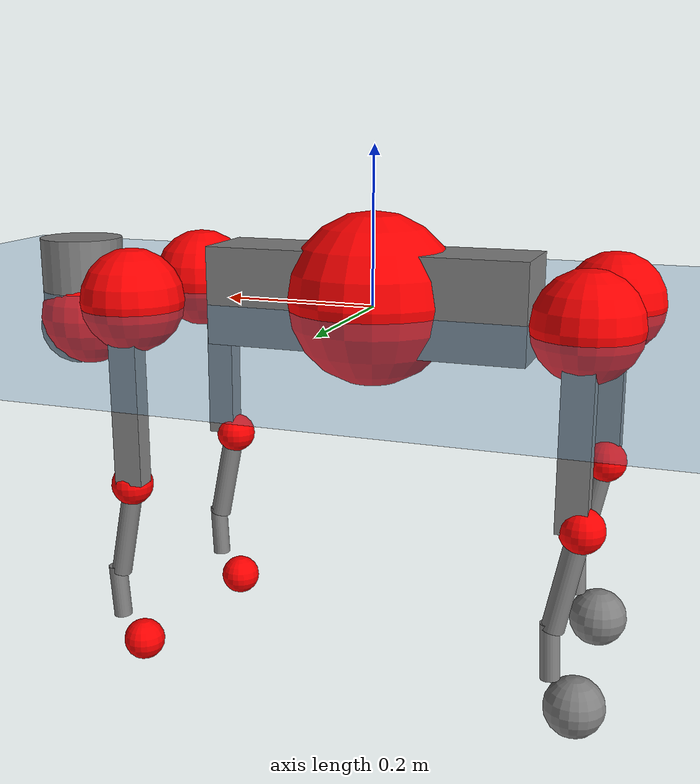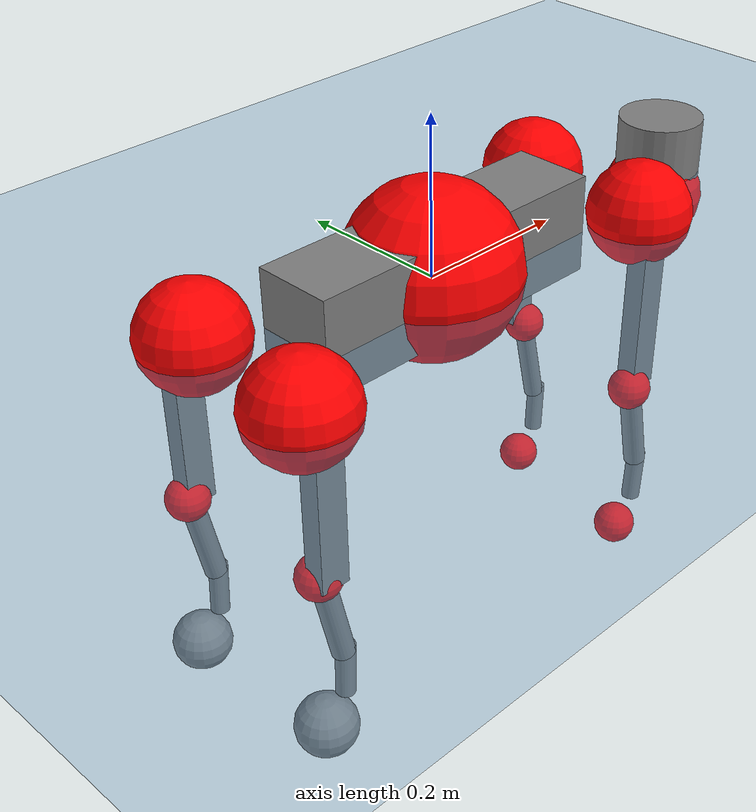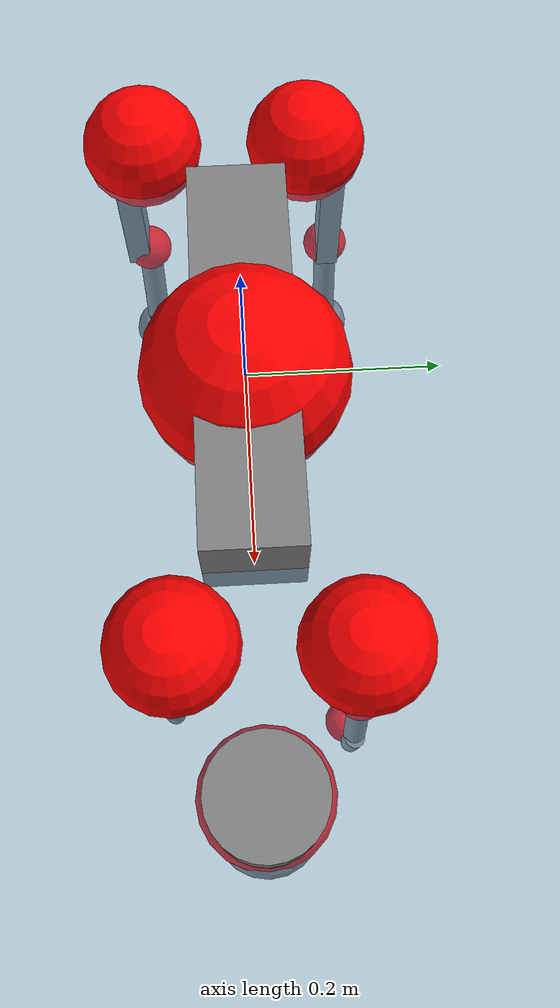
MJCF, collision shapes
<mujoco model="go2">
  <compiler angle="radian" assetdir="assets" balanceinertia="true" inertiafromgeom="false"/>

  <option timestep="0.005" density="1.2" viscosity="2e-05"/>

  <size nkey="1"/>

  <visual>
    <quality shadowsize="8192"/>
    <map shadowclip="0.5"/>
  </visual>

  <default>
    <default class="/">
      <geom contype="0" conaffinity="0" group="1" solref="-1000 -80"/>
      <site size="0.01 0.005 0.005" group="5"/>
      <general forcelimited="true" biastype="affine" gainprm="20" biasprm="0 -20 -0.5"/>
      <default class="go2">
        <joint armature="0.01" damping="0.01" frictionloss="0.2"/>
        <geom condim="1" margin="0.001"/>
        <default class="visual">
          <geom type="mesh" group="2"/>
        </default>
        <default class="collision">
          <geom group="3"/>
          <default class="foot">
            <geom size="0.022 0 0" condim="6" priority="1" friction="0.8 0.02 0.01" solimp="0.015 1 0.022"/>
          </default>
        </default>
        <default class="reward_collision_sphere">
          <geom group="5" rgba="1 0 0 1"/>
        </default>
      </default>
    </default>
  </default>

  <asset>
    <texture type="skybox" colorspace="auto" name="//unnamed_texture_0" builtin="gradient" rgb1="0.95 0.95 0.95" rgb2="0.95 0.95 0.95" width="100" height="600"/>
    <texture type="2d" colorspace="auto" name="texplane" builtin="checker" rgb1="0.345 0.575 0.748" rgb2="0.345 0.575 0.748" markrgb="1 1 1" width="512" height="512"/>
    <material name="MatPlane" class="/" texture="texplane" texuniform="true" texrepeat="2 2" specular="0.9"/>
    <material name="metal" class="/" rgba="0.9 0.95 0.95 1"/>
    <material name="black" class="/" rgba="0 0 0 1"/>
    <material name="white" class="/"/>
    <material name="gray" class="/" rgba="0.671705 0.692426 0.77427 1"/>
    <mesh name="base_0" class="/" file="base_0.obj"/>
    <mesh name="base_1" class="/" file="base_1.obj"/>
    <mesh name="base_2" class="/" file="base_2.obj"/>
    <mesh name="base_3" class="/" file="base_3.obj"/>
    <mesh name="base_4" class="/" file="base_4.obj"/>
    <mesh name="hip_0" class="/" file="hip_0.obj"/>
    <mesh name="hip_1" class="/" file="hip_1.obj"/>
    <mesh name="thigh_0" class="/" file="thigh_0.obj"/>
    <mesh name="thigh_1" class="/" file="thigh_1.obj"/>
    <mesh name="thigh_mirror_0" class="/" file="thigh_mirror_0.obj"/>
    <mesh name="thigh_mirror_1" class="/" file="thigh_mirror_1.obj"/>
    <mesh name="calf_0" class="/" file="calf_0.obj"/>
    <mesh name="calf_1" class="/" file="calf_1.obj"/>
    <mesh name="calf_mirror_0" class="/" file="calf_mirror_0.obj"/>
    <mesh name="calf_mirror_1" class="/" file="calf_mirror_1.obj"/>
    <mesh name="foot" class="/" file="foot.obj"/>
  </asset>

  <worldbody>
    <geom name="floor" class="/" size="100 100 0.125" type="plane" group="0" material="MatPlane"/>
    <light name="toplight_shadow" class="/" pos="0 0 5" dir="0.0990148 0.0990148 -0.990148" type="directional" ambient="0.04 0.04 0.04" diffuse="0.55 0.55 0.55" specular="0.12 0.12 0.12"/>
    <light name="toplight_fill" class="/" pos="0 0 5" dir="0.0990148 0.0990148 -0.990148" type="directional" castshadow="false" ambient="0.04 0.04 0.04" diffuse="0.3 0.3 0.3" specular="0.08 0.08 0.08"/>
    <body name="trunk" childclass="go2" pos="0.000450271 0.000355869 0.0109736" quat="1 -1.92986e-05 0.000484449 0.00023999">
      <inertial pos="0.0291332 -0.0148229 -0.0175924" quat="0.00121292 0.713399 -0.000227075 0.700757" mass="9.5479" diaginertia="0.679808 0.0295321 0.0343845"/>
      <joint name="//unnamed_joint_0" type="free" armature="0" damping="0" frictionloss="0"/>
      <geom name="//unnamed_geom_1" class="visual" material="black" mesh="base_0"/>
      <geom name="//unnamed_geom_2" class="visual" material="black" mesh="base_1"/>
      <geom name="//unnamed_geom_3" class="visual" material="black" mesh="base_2"/>
      <geom name="//unnamed_geom_4" class="visual" material="white" mesh="base_3"/>
      <geom name="//unnamed_geom_5" class="visual" material="gray" mesh="base_4"/>
      <geom name="trunk_1" class="collision" size="0.206618 0.0513525 0.0626116" type="box"/>
      <geom name="trunk_2" class="collision" size="0.0549224 0.0494302" pos="0.419736 0 0.0104667" type="cylinder"/>
      <geom name="trunk_3" class="collision" size="0.0516271" pos="0.431518 0 -0.0627999"/>
      <geom name="//unnamed_geom_9" class="reward_collision_sphere" size="0.109845"/>
      <geom name="//unnamed_geom_10" class="reward_collision_sphere" size="0.0659069" pos="0.412372 0 -0.0470999"/>
      <site name="imu" pos="-0.0696855 0.0447396 0.0103935" size="0.0109845"/>
      <camera name="track" pos="0 -1.55185 0" quat="0.707107 0.707107 0 0" mode="trackcom"/>
      <camera name="ego_camera" pos="0.4595 0 0.0470999" quat="-0.5 -0.5 0.5 0.5"/>
      <body name="FL_hip" pos="0.286204 0.0459665 -0.00224591" quat="0.999997 -0.00108287 -0.00116037 0.00207366">
        <inertial pos="0.00524032 0.00266763 0.00853664" quat="0.483361 0.501879 0.506502 0.507874" mass="1.02517" diaginertia="0.00661197 0.000199072 0.000571273"/>
        <joint name="FL_hip_joint" pos="0 0 0" axis="0.999958 -0.00386016 0.00826758" range="-0.896491 1.05791" armature="0.00522069" damping="0" frictionloss="0.359123"/>
        <geom name="//unnamed_geom_11" class="visual" material="metal" mesh="hip_0"/>
        <geom name="//unnamed_geom_12" class="visual" material="gray" mesh="hip_1"/>
        <geom name="//unnamed_geom_13" class="collision" size="0.0505286 0.021969" pos="0 0.0620739 0" quat="0.707107 0.707107 0 0" type="cylinder"/>
        <geom name="//unnamed_geom_14" class="reward_collision_sphere" size="0.0659069" pos="0 0.0543146 0"/>
        <body name="FL_thigh" pos="-0.000822736 0.0771893 -0.00755216" quat="1 -0.000189789 -7.27531e-05 -0.000136002">
          <inertial pos="-0.00423306 -0.0172459 -0.0254149" quat="0.832637 0.0808284 -0.0177073 0.547602" mass="1.67394" diaginertia="0.0394897 0.00163553 0.00154245"/>
          <joint name="FL_thigh_joint" pos="0 0 0" axis="0.0122825 0.999239 -0.0370194" stiffness="0.0280676" range="-1.36696 3.34059" armature="0.0076243" damping="0.00950241" frictionloss="0.191735"/>
          <geom name="//unnamed_geom_15" class="visual" material="metal" mesh="thigh_0"/>
          <geom name="//unnamed_geom_16" class="visual" material="gray" mesh="thigh_1"/>
          <geom name="//unnamed_geom_17" class="collision" size="0.116985 0.013456 0.0186736" pos="0 0 -0.11147" quat="0.707107 0 0.707107 0" type="box"/>
          <body name="FL_calf" pos="0.00755764 -0.0107888 -0.23462" quat="0.999975 -0.00408475 0.00564741 -0.00154447">
            <inertial pos="0.0112443 -8.54882e-05 -0.148488" quat="0.709274 0.000426972 -0.00461011 0.704918" mass="0.39594" diaginertia="0.0100737 0.00042355 7.44077e-05"/>
            <joint name="FL_calf_joint" pos="0 0 0" axis="-0.0227279 0.99966 0.0127789" range="-2.78365 -0.759283" armature="0.0155588" damping="0" frictionloss="0.340559"/>
            <geom name="//unnamed_geom_18" class="visual" material="gray" mesh="calf_0"/>
            <geom name="//unnamed_geom_19" class="visual" material="black" mesh="calf_1"/>
            <geom name="FL_calf0" class="collision" size="0.0131814 0.0659069" pos="0.0117821 0 -0.0627999" quat="0.994493 0 -0.104807 0" type="cylinder"/>
            <geom name="//unnamed_geom_21" class="collision" size="0.0120829 0.0356996" pos="0.0294552 0 -0.154906" quat="0.999688 0 0.0249974 0" type="cylinder"/>
            <geom name="//unnamed_geom_22" class="visual" pos="0 0 -0.22294" quat="1 0 0 0" material="black" mesh="foot"/>
            <geom name="FL_foot" class="foot" size="0.0130061" pos="-0.00294552 0 -0.22294"/>
            <geom name="//unnamed_geom_24" class="reward_collision_sphere" size="0.0274612"/>
            <geom name="//unnamed_geom_25" class="reward_collision_sphere" size="0.0274612" pos="-0.00294552 0 -0.22294"/>
            <site name="FL_foot" class="foot" pos="-0.00294552 0 -0.22294" size="0.0109845"/>
          </body>
        </body>
      </body>
      <body name="FR_hip" pos="0.278606 -0.0266864 0.00117932" quat="0.999981 0.00379023 -0.000308189 -0.0049228">
        <inertial pos="-0.00775849 -0.00489351 0.00361536" quat="0.498394 0.505098 0.499298 0.497173" mass="0.976191" diaginertia="0.0073553 0.000216782 0.000584031"/>
        <joint name="FR_hip_joint" pos="0 0 0" axis="0.999999 -0.00122384 -0.000787157" range="-1.28462 1.33073" armature="0.0113997" damping="0" frictionloss="0.329985"/>
        <geom name="//unnamed_geom_26" class="visual" pos="0 -2.35859e-09 -1.01165e-07" quat="4.63268e-05 1 0 0" material="metal" mesh="hip_0"/>
        <geom name="//unnamed_geom_27" class="visual" pos="0 -3.82356e-09 2.5022e-07" quat="4.63268e-05 1 0 0" material="gray" mesh="hip_1"/>
        <geom name="//unnamed_geom_28" class="collision" size="0.0505286 0.021969" pos="0 -0.0620739 0" quat="0.707107 0.707107 0 0" type="cylinder"/>
        <geom name="//unnamed_geom_29" class="reward_collision_sphere" size="0.0659069" pos="0 -0.0543146 0"/>
        <body name="FR_thigh" pos="-0.0156049 -0.0832079 0.000306488" quat="0.999996 0.00230265 -0.00024622 -0.00160642">
          <inertial pos="-0.00626738 0.0205161 -0.0337176" quat="0.551437 -0.0211283 0.0847335 0.829633" mass="1.34965" diaginertia="0.0388914 0.00143927 0.00083762"/>
          <joint name="FR_thigh_joint" pos="0 0 0" axis="0.0165479 -0.997358 -0.0707352" range="-3.81334 1.85528" armature="0.0106036" damping="0.0625055" frictionloss="0.272064"/>
          <geom name="//unnamed_geom_30" class="visual" material="metal" mesh="thigh_mirror_0"/>
          <geom name="//unnamed_geom_31" class="visual" material="gray" mesh="thigh_mirror_1"/>
          <geom name="//unnamed_geom_32" class="collision" size="0.116985 0.013456 0.0186736" pos="0 0 -0.11147" quat="0.707107 0 0.707107 0" type="box"/>
          <body name="FR_calf" pos="-0.0145735 -0.00437905 -0.231496" quat="0.999998 0.00126454 0.00128357 -0.000977993">
            <inertial pos="0.0162261 0.005227 -0.163445" quat="0.701329 -0.00154858 0.0294464 0.712227" mass="0.387339" diaginertia="0.00913991 0.000417881 6.77246e-05"/>
            <joint name="FR_calf_joint" pos="0 0 0" axis="-0.0658268 -0.996689 -0.047728" stiffness="0.0326674" range="0.728206 2.97591" armature="0.0118569" damping="0" frictionloss="0.397181"/>
            <geom name="//unnamed_geom_33" class="visual" material="gray" mesh="calf_mirror_0"/>
            <geom name="//unnamed_geom_34" class="visual" material="black" mesh="calf_mirror_1"/>
            <geom name="FR_calf0" class="collision" size="0.0142798 0.0659069" pos="0.0147276 0 -0.0627999" quat="0.995004 0 -0.0998334 0" type="cylinder"/>
            <geom name="//unnamed_geom_36" class="collision" size="0.0120829 0.0356996" pos="0.0294552 0 -0.154906" quat="0.999688 0 0.0249974 0" type="cylinder"/>
            <geom name="//unnamed_geom_37" class="visual" pos="0 0 -0.22294" quat="1 0 0 0" material="black" mesh="foot"/>
            <geom name="FR_foot" class="foot" size="0.0200823" pos="-0.00294552 0 -0.22294"/>
            <geom name="//unnamed_geom_39" class="reward_collision_sphere" size="0.0274612"/>
            <geom name="//unnamed_geom_40" class="reward_collision_sphere" size="0.0274612" pos="-0.00294552 0 -0.22294"/>
            <site name="FR_foot" class="foot" pos="-0.00294552 0 -0.22294" size="0.0109845"/>
          </body>
        </body>
      </body>
      <body name="RL_hip" pos="-0.280242 0.0248661 -0.0025917" quat="0.999999 0.00119631 -0.000720351 -0.000228463">
        <inertial pos="0.0162504 0.0143819 -0.00389798" quat="0.435408 0.498644 0.535768 0.524144" mass="1.08662" diaginertia="0.00565794 0.000146608 0.000662668"/>
        <joint name="RL_hip_joint" pos="0 0 0" axis="-0.998475 -0.0168453 0.0525685" stiffness="0.0578631" range="-1.14229 1.21256" armature="0.0113489" damping="0.0603693" frictionloss="0.125815"/>
        <geom name="//unnamed_geom_41" class="visual" pos="-3.71194e-09 0 -7.27626e-07" quat="4.63268e-05 0 1 0" material="metal" mesh="hip_0"/>
        <geom name="//unnamed_geom_42" class="visual" pos="-6.0175e-09 0 -6.45301e-07" quat="4.63268e-05 0 1 0" material="gray" mesh="hip_1"/>
        <geom name="//unnamed_geom_43" class="collision" size="0.0505286 0.021969" pos="0 0.0620739 0" quat="0.707107 0.707107 0 0" type="cylinder"/>
        <geom name="//unnamed_geom_44" class="reward_collision_sphere" size="0.0659069" pos="0 0.0543146 0"/>
        <body name="RL_thigh" pos="0.000712891 0.0871612 -0.00524944" quat="0.99999 -0.00188438 0.00241424 0.00310412">
          <inertial pos="0.000829658 -0.00648007 -0.0337633" quat="0.844685 0.0937264 -0.00282496 0.526987" mass="1.44484" diaginertia="0.035466 0.0014991 0.000812043"/>
          <joint name="RL_thigh_joint" pos="0 0 0" axis="-0.00454087 0.999804 -0.019263" range="-0.543219 4.54189" armature="0.0113884" damping="0.0373873" frictionloss="0.229589"/>
          <geom name="//unnamed_geom_45" class="visual" material="metal" mesh="thigh_0"/>
          <geom name="//unnamed_geom_46" class="visual" material="gray" mesh="thigh_1"/>
          <geom name="//unnamed_geom_47" class="collision" size="0.116985 0.013456 0.0186736" pos="0 0 -0.11147" quat="0.707107 0 0.707107 0" type="box"/>
          <body name="RL_calf" pos="-0.0115721 -0.0002668 -0.225437" quat="0.99998 0.00606078 -0.00121693 -0.00101946">
            <inertial pos="-0.00257363 0.00579219 -0.13746" quat="0.710282 0.00186766 -0.00426316 0.703902" mass="0.295503" diaginertia="0.00876535 0.000268262 4.17292e-05"/>
            <joint name="RL_calf_joint" pos="0 0 0" axis="-0.0489171 0.998802 0.0016149" range="-2.74018 -0.501452" armature="0.0113642" damping="0" frictionloss="0.129804"/>
            <geom name="//unnamed_geom_48" class="visual" material="gray" mesh="calf_0"/>
            <geom name="//unnamed_geom_49" class="visual" material="black" mesh="calf_1"/>
            <geom name="RL_calf0" class="collision" size="0.0142798 0.0659069" pos="0.0147276 0 -0.0627999" quat="0.995004 0 -0.0998334 0" type="cylinder"/>
            <geom name="//unnamed_geom_51" class="collision" size="0.0120829 0.0356996" pos="0.0294552 0 -0.154906" quat="0.999688 0 0.0249974 0" type="cylinder"/>
            <geom name="//unnamed_geom_52" class="visual" pos="0 0 -0.22294" quat="1 0 0 0" material="black" mesh="foot"/>
            <geom name="RL_foot" class="foot" size="0.0374799" pos="-0.00294552 0 -0.22294"/>
            <geom name="//unnamed_geom_54" class="reward_collision_sphere" size="0.0274612"/>
            <geom name="//unnamed_geom_55" class="reward_collision_sphere" size="0.0274612" pos="-0.00294552 0 -0.22294"/>
            <site name="RL_foot" class="foot" pos="-0.00294552 0 -0.22294" size="0.0109845"/>
          </body>
        </body>
      </body>
      <body name="RR_hip" pos="-0.284837 -0.0480763 -0.00594659" quat="0.999978 0.000562376 0.00284976 -0.00595301">
        <inertial pos="0.00338949 -0.00977254 0.00757063" quat="0.460183 0.562467 0.473984 0.497194" mass="1.08135" diaginertia="0.00605968 0.000208678 0.000672746"/>
        <joint name="RR_hip_joint" pos="0 0 0" axis="-0.999498 0.0127895 0.0289958" stiffness="0.0280998" range="-0.787079 0.949669" armature="0.0189766" damping="0.017932" frictionloss="0.111238"/>
        <geom name="//unnamed_geom_56" class="visual" pos="3.68782e-09 -2.35859e-09 -6.26461e-07" quat="2.14617e-09 4.63268e-05 4.63268e-05 -1" material="metal" mesh="hip_0"/>
        <geom name="//unnamed_geom_57" class="visual" pos="6.07717e-09 -3.82356e-09 -8.9552e-07" quat="2.14617e-09 4.63268e-05 4.63268e-05 -1" material="gray" mesh="hip_1"/>
        <geom name="//unnamed_geom_58" class="collision" size="0.0505286 0.021969" pos="0 -0.0620739 0" quat="0.707107 0.707107 0 0" type="cylinder"/>
        <geom name="//unnamed_geom_59" class="reward_collision_sphere" size="0.0659069" pos="0 -0.0543146 0"/>
        <body name="RR_thigh" pos="0.00323842 -0.0787052 0.0148556" quat="0.999999 0.000298369 0.00139053 0.000332999">
          <inertial pos="-0.00580305 0.000897998 -0.0434133" quat="0.565167 -0.0510566 0.0356707 0.822622" mass="1.826" diaginertia="0.0507132 0.00199793 0.0013705"/>
          <joint name="RR_thigh_joint" pos="0 0 0" axis="-0.0159819 -0.998729 -0.0478051" range="-4.6847 0.81074" armature="0.00130648" damping="0" frictionloss="0.154403"/>
          <geom name="//unnamed_geom_60" class="visual" material="metal" mesh="thigh_mirror_0"/>
          <geom name="//unnamed_geom_61" class="visual" material="gray" mesh="thigh_mirror_1"/>
          <geom name="//unnamed_geom_62" class="collision" size="0.116985 0.013456 0.0186736" pos="0 0 -0.11147" quat="0.707107 0 0.707107 0" type="box"/>
          <body name="RR_calf" pos="-0.0024526 0.0119328 -0.226656" quat="0.999984 -0.000329013 -0.00537708 -0.00167972">
            <inertial pos="0.000951441 0.000835903 -0.148551" quat="0.714768 -0.0446235 -0.0596002 0.695387" mass="0.415039" diaginertia="0.0108221 0.000488058 5.86193e-05"/>
            <joint name="RR_calf_joint" pos="0 0 0" axis="-0.00089197 -0.997562 -0.0697847" range="0.595107 2.45043" armature="0.0117339" damping="0" frictionloss="0.181737"/>
            <geom name="//unnamed_geom_63" class="visual" material="gray" mesh="calf_mirror_0"/>
            <geom name="//unnamed_geom_64" class="visual" material="black" mesh="calf_mirror_1"/>
            <geom name="RR_calf0" class="collision" size="0.0142798 0.0659069" pos="0.0147276 0 -0.0627999" quat="0.995004 0 -0.0998334 0" type="cylinder"/>
            <geom name="//unnamed_geom_66" class="collision" size="0.0120829 0.0356996" pos="0.0294552 0 -0.154906" quat="0.999688 0 0.0249974 0" type="cylinder"/>
            <geom name="//unnamed_geom_67" class="visual" pos="0 0 -0.22294" quat="1 0 0 0" material="black" mesh="foot"/>
            <geom name="RR_foot" class="foot" size="0.0388139" pos="-0.00294552 0 -0.22294"/>
            <geom name="//unnamed_geom_69" class="reward_collision_sphere" size="0.0274612"/>
            <geom name="//unnamed_geom_70" class="reward_collision_sphere" size="0.0274612" pos="-0.00294552 0 -0.22294"/>
            <site name="RR_foot" class="foot" pos="-0.00294552 0 -0.22294" size="0.0109845"/>
          </body>
        </body>
      </body>
    </body>
  </worldbody>

  <contact>
    <pair class="/" geom1="floor" geom2="FL_foot" name="//unnamed_contact_0"/>
    <pair class="/" geom1="floor" geom2="FR_foot" name="//unnamed_contact_1"/>
    <pair class="/" geom1="floor" geom2="RL_foot" name="//unnamed_contact_2"/>
    <pair class="/" geom1="floor" geom2="RR_foot" name="//unnamed_contact_3"/>
  </contact>

  <actuator>
    <general name="FL_hip" class="/" joint="FL_hip_joint" forcerange="-34.9011 34.9011" gainprm="14.0069" biasprm="0 -14.0069 -0.446821"/>
    <general name="FL_thigh" class="/" joint="FL_thigh_joint" forcerange="-41.6983 41.6983" gainprm="14.0069" biasprm="0 -14.0069 -0.446821"/>
    <general name="FL_calf" class="/" joint="FL_calf_joint" forcerange="-40.2997 40.2997" gainprm="14.0069" biasprm="0 -14.0069 -0.446821"/>
    <general name="FR_hip" class="/" joint="FR_hip_joint" forcerange="-31.6985 31.6985" gainprm="14.0069" biasprm="0 -14.0069 -0.446821"/>
    <general name="FR_thigh" class="/" joint="FR_thigh_joint" forcerange="-19.7039 19.7039" gainprm="14.0069" biasprm="0 -14.0069 -0.446821"/>
    <general name="FR_calf" class="/" joint="FR_calf_joint" forcerange="-64.6883 64.6883" gainprm="14.0069" biasprm="0 -14.0069 -0.446821"/>
    <general name="RL_hip" class="/" joint="RL_hip_joint" forcerange="-15.9717 15.9717" gainprm="14.0069" biasprm="0 -14.0069 -0.446821"/>
    <general name="RL_thigh" class="/" joint="RL_thigh_joint" forcerange="-26.1302 26.1302" gainprm="14.0069" biasprm="0 -14.0069 -0.446821"/>
    <general name="RL_calf" class="/" joint="RL_calf_joint" forcerange="-66.1269 66.1269" gainprm="14.0069" biasprm="0 -14.0069 -0.446821"/>
    <general name="RR_hip" class="/" joint="RR_hip_joint" forcerange="-41.453 41.453" gainprm="14.0069" biasprm="0 -14.0069 -0.446821"/>
    <general name="RR_thigh" class="/" joint="RR_thigh_joint" forcerange="-29.9163 29.9163" gainprm="14.0069" biasprm="0 -14.0069 -0.446821"/>
    <general name="RR_calf" class="/" joint="RR_calf_joint" forcerange="-58.4346 58.4346" gainprm="14.0069" biasprm="0 -14.0069 -0.446821"/>
  </actuator>

  <sensor>
    <gyro site="imu" name="imu_angular_velocity"/>
    <velocimeter site="imu" name="imu_linear_velocity"/>
    <framelinvel objtype="site" objname="FL_foot" name="FL_foot_global_linear_velocity"/>
    <framelinvel objtype="site" objname="FR_foot" name="FR_foot_global_linear_velocity"/>
    <framelinvel objtype="site" objname="RL_foot" name="RL_foot_global_linear_velocity"/>
    <framelinvel objtype="site" objname="RR_foot" name="RR_foot_global_linear_velocity"/>
  </sensor>

  <keyframe>
    <key name="home" qpos="0 0 0.325 1 0 0 0 0.1 0.8 -1.5 -0.1 -0.8 1.5 -0.1 0.8 -1.5 0.1 -0.8 1.5"/>
  </keyframe>
</mujoco>
